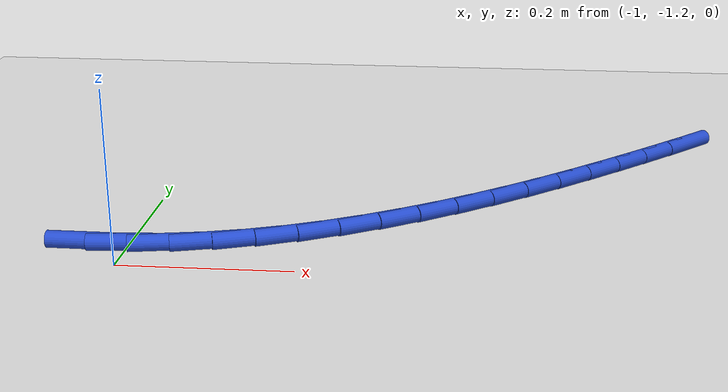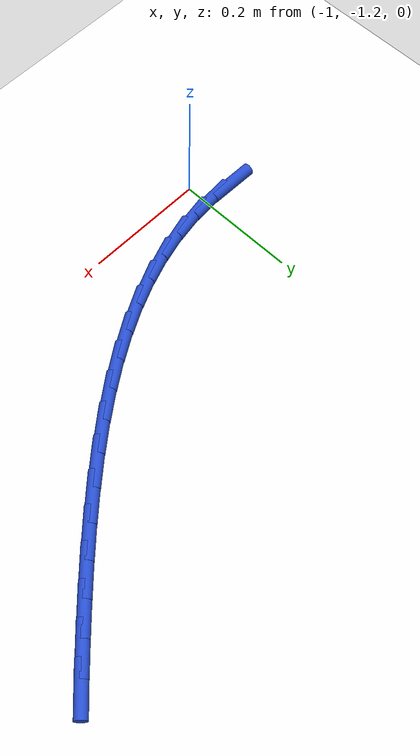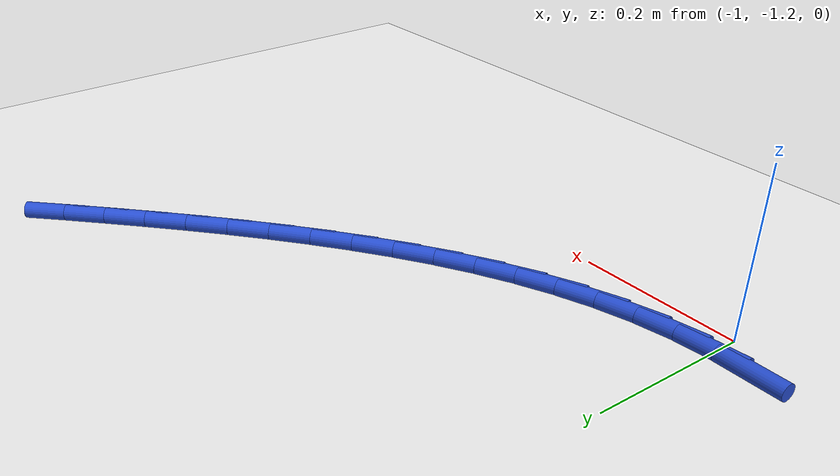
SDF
<sdf version="1.6">
 <world name="default">
  <model name="ground_plane">
   <static>1</static>
   <link name="link">
    <collision name="collision">
     <geometry><plane><normal>0 0 1</normal><size>100 100</size></plane></geometry>
     <surface><friction><ode><mu>100</mu><mu2>50</mu2></ode></friction></surface>
    </collision>
    <visual name="visual">
     <cast_shadows>0</cast_shadows>
     <geometry><plane><normal>0 0 1</normal><size>100 100</size></plane></geometry>
     <material>
      <script><uri>file://media/materials/scripts/gazebo.material</uri><name>Gazebo/WhiteGlow</name></script>
     </material>
    </visual>
   </link>
  </model>
  <model name="line">
   <link name="link_106">
    <pose>-1.0498843269074776 -1.1562681520914388 0.01 0 1.57 -0.011986488328204658</pose>
    <collision name="collision">
     <geometry><cylinder><radius>0.01</radius><length>0.08</length></cylinder></geometry>
    </collision>
    <visual name="visual">
     <material>
      <script><name>Gazebo/Blue</name><uri>file://media/materials/scripts/gazebo.material</uri></script>
     </material>
     <geometry><cylinder><radius>0.01</radius><length>0.08</length></cylinder></geometry>
    </visual>
   </link>
   <link name="link_107">
    <pose>-1.0030816193057022 -1.156829179068779 0.01 0 1.57 0.08319348826435806</pose>
    <collision name="collision">
     <geometry><cylinder><radius>0.01</radius><length>0.08</length></cylinder></geometry>
    </collision>
    <visual name="visual">
     <material>
      <script><name>Gazebo/Blue</name><uri>file://media/materials/scripts/gazebo.material</uri></script>
     </material>
     <geometry><cylinder><radius>0.01</radius><length>0.08</length></cylinder></geometry>
    </visual>
   </link>
   <link name="link_108">
    <pose>-0.9567725449705761 -1.152967652780672 0.01 0 1.57 0.180284974861105</pose>
    <collision name="collision">
     <geometry><cylinder><radius>0.01</radius><length>0.08</length></cylinder></geometry>
    </collision>
    <visual name="visual">
     <material>
      <script><name>Gazebo/Blue</name><uri>file://media/materials/scripts/gazebo.material</uri></script>
     </material>
     <geometry><cylinder><radius>0.01</radius><length>0.08</length></cylinder></geometry>
    </visual>
   </link>
   <link name="link_109">
    <pose>-0.9110012582879465 -1.1446251970204704 0.01 0 1.57 0.269812392289272</pose>
    <collision name="collision">
     <geometry><cylinder><radius>0.01</radius><length>0.08</length></cylinder></geometry>
    </collision>
    <visual name="visual">
     <material>
      <script><name>Gazebo/Blue</name><uri>file://media/materials/scripts/gazebo.material</uri></script>
     </material>
     <geometry><cylinder><radius>0.01</radius><length>0.08</length></cylinder></geometry>
    </visual>
   </link>
   <link name="link_110">
    <pose>-0.8657870919717991 -1.1321209404075274 0.01 0 1.57 0.3507612931226021</pose>
    <collision name="collision">
     <geometry><cylinder><radius>0.01</radius><length>0.08</length></cylinder></geometry>
    </collision>
    <visual name="visual">
     <material>
      <script><name>Gazebo/Blue</name><uri>file://media/materials/scripts/gazebo.material</uri></script>
     </material>
     <geometry><cylinder><radius>0.01</radius><length>0.08</length></cylinder></geometry>
    </visual>
   </link>
   <link name="link_111">
    <pose>-0.8211484560483648 -1.115788044422526 0.01 0 1.57 0.42300988790087635</pose>
    <collision name="collision">
     <geometry><cylinder><radius>0.01</radius><length>0.08</length></cylinder></geometry>
    </collision>
    <visual name="visual">
     <material>
      <script><name>Gazebo/Blue</name><uri>file://media/materials/scripts/gazebo.material</uri></script>
     </material>
     <geometry><cylinder><radius>0.01</radius><length>0.08</length></cylinder></geometry>
    </visual>
   </link>
   <link name="link_112">
    <pose>-0.7771037605438751 -1.0959596705461494 0.01 0 1.57 0.48684700243931867</pose>
    <collision name="collision">
     <geometry><cylinder><radius>0.01</radius><length>0.08</length></cylinder></geometry>
    </collision>
    <visual name="visual">
     <material>
      <script><name>Gazebo/Blue</name><uri>file://media/materials/scripts/gazebo.material</uri></script>
     </material>
     <geometry><cylinder><radius>0.01</radius><length>0.08</length></cylinder></geometry>
    </visual>
   </link>
   <link name="link_113">
    <pose>-0.7336714154845614 -1.0729689802590807 0.01 0 1.57 0.5428021710868159</pose>
    <collision name="collision">
     <geometry><cylinder><radius>0.01</radius><length>0.08</length></cylinder></geometry>
    </collision>
    <visual name="visual">
     <material>
      <script><name>Gazebo/Blue</name><uri>file://media/materials/scripts/gazebo.material</uri></script>
     </material>
     <geometry><cylinder><radius>0.01</radius><length>0.08</length></cylinder></geometry>
    </visual>
   </link>
   <link name="link_114">
    <pose>-0.6908698308966568 -1.0471491350420046 0.01 0 1.57 0.5915128387949321</pose>
    <collision name="collision">
     <geometry><cylinder><radius>0.01</radius><length>0.08</length></cylinder></geometry>
    </collision>
    <visual name="visual">
     <material>
      <script><name>Gazebo/Blue</name><uri>file://media/materials/scripts/gazebo.material</uri></script>
     </material>
     <geometry><cylinder><radius>0.01</radius><length>0.08</length></cylinder></geometry>
    </visual>
   </link>
   <link name="link_115">
    <pose>-0.648717416806392 -1.0188332963756026 0.01 0 1.57 0.6336332805074385</pose>
    <collision name="collision">
     <geometry><cylinder><radius>0.01</radius><length>0.08</length></cylinder></geometry>
    </collision>
    <visual name="visual">
     <material>
      <script><name>Gazebo/Blue</name><uri>file://media/materials/scripts/gazebo.material</uri></script>
     </material>
     <geometry><cylinder><radius>0.01</radius><length>0.08</length></cylinder></geometry>
    </visual>
   </link>
   <link name="link_116">
    <pose>-0.6072325832399994 -0.9883546257405594 0.01 0 1.57 0.6697784091779949</pose>
    <collision name="collision">
     <geometry><cylinder><radius>0.01</radius><length>0.08</length></cylinder></geometry>
    </collision>
    <visual name="visual">
     <material>
      <script><name>Gazebo/Blue</name><uri>file://media/materials/scripts/gazebo.material</uri></script>
     </material>
     <geometry><cylinder><radius>0.01</radius><length>0.08</length></cylinder></geometry>
    </visual>
   </link>
   <link name="link_117">
    <pose>-0.5664337402237096 -0.9560462846175573 0.01 0 1.57 0.7004924629686103</pose>
    <collision name="collision">
     <geometry><cylinder><radius>0.01</radius><length>0.08</length></cylinder></geometry>
    </collision>
    <visual name="visual">
     <material>
      <script><name>Gazebo/Blue</name><uri>file://media/materials/scripts/gazebo.material</uri></script>
     </material>
     <geometry><cylinder><radius>0.01</radius><length>0.08</length></cylinder></geometry>
    </visual>
   </link>
   <link name="link_118">
    <pose>-0.5263392977837558 -0.9222414344872801 0.01 0 1.57 0.7262334465762682</pose>
    <collision name="collision">
     <geometry><cylinder><radius>0.01</radius><length>0.08</length></cylinder></geometry>
    </collision>
    <visual name="visual">
     <material>
      <script><name>Gazebo/Blue</name><uri>file://media/materials/scripts/gazebo.material</uri></script>
     </material>
     <geometry><cylinder><radius>0.01</radius><length>0.08</length></cylinder></geometry>
    </visual>
   </link>
   <link name="link_119">
    <pose>-0.4869676659463692 -0.8872732368304118 0.01 0 1.57 0.7473663513151112</pose>
    <collision name="collision">
     <geometry><cylinder><radius>0.01</radius><length>0.08</length></cylinder></geometry>
    </collision>
    <visual name="visual">
     <material>
      <script><name>Gazebo/Blue</name><uri>file://media/materials/scripts/gazebo.material</uri></script>
     </material>
     <geometry><cylinder><radius>0.01</radius><length>0.08</length></cylinder></geometry>
    </visual>
   </link>
   <link name="link_120">
    <pose>-0.4483372547377814 -0.8514748531276348 0.01 0 1.57 0.7641602455984893</pose>
    <collision name="collision">
     <geometry><cylinder><radius>0.01</radius><length>0.08</length></cylinder></geometry>
    </collision>
    <visual name="visual">
     <material>
      <script><name>Gazebo/Blue</name><uri>file://media/materials/scripts/gazebo.material</uri></script>
     </material>
     <geometry><cylinder><radius>0.01</radius><length>0.08</length></cylinder></geometry>
    </visual>
   </link>
   <link name="link_121">
    <pose>-0.4104664741842243 -0.8151794448596327 0.01 0 1.57 0.7767868338883732</pose>
    <collision name="collision">
     <geometry><cylinder><radius>0.01</radius><length>0.08</length></cylinder></geometry>
    </collision>
    <visual name="visual">
     <material>
      <script><name>Gazebo/Blue</name><uri>file://media/materials/scripts/gazebo.material</uri></script>
     </material>
     <geometry><cylinder><radius>0.01</radius><length>0.08</length></cylinder></geometry>
    </visual>
   </link>
   <link name="link_122">
    <pose>-0.37337375133097145 -0.7787201185939948 0.01 0 1.57 0.7873433384116197</pose>
    <collision name="collision">
     <geometry><cylinder><radius>0.01</radius><length>0.08</length></cylinder></geometry>
    </collision>
    <visual name="visual">
     <material>
      <script><name>Gazebo/Blue</name><uri>file://media/materials/scripts/gazebo.material</uri></script>
     </material>
     <geometry><cylinder><radius>0.01</radius><length>0.08</length></cylinder></geometry>
    </visual>
   </link>
   <link name="link_123">
    <pose>-0.3371123984761992 -0.7423174212661101 0.01 0 1.57 0.8022087810713805</pose>
    <collision name="collision">
     <geometry><cylinder><radius>0.01</radius><length>0.08</length></cylinder></geometry>
    </collision>
    <visual name="visual">
     <material>
      <script><name>Gazebo/Blue</name><uri>file://media/materials/scripts/gazebo.material</uri></script>
     </material>
     <geometry><cylinder><radius>0.01</radius><length>0.08</length></cylinder></geometry>
    </visual>
   </link>
  </model>
 </world>
</sdf>
